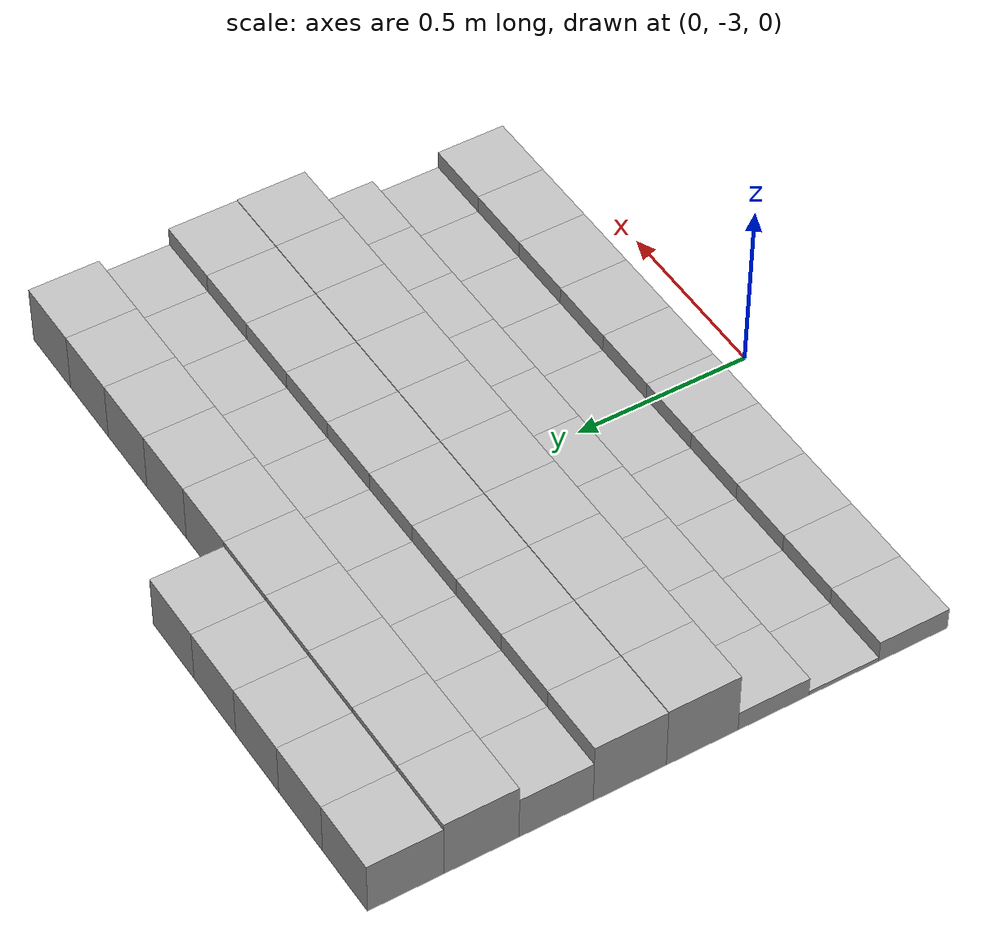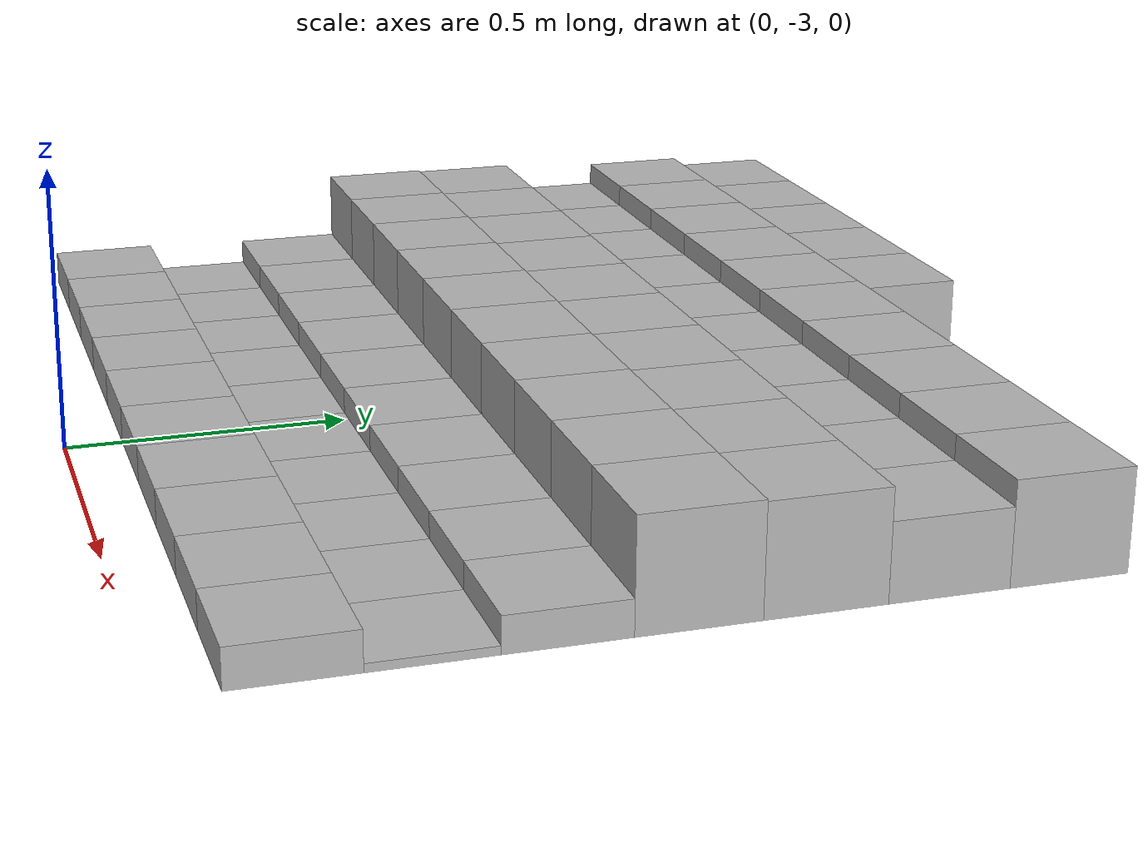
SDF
<sdf version="1.6">
 <model name="Terrain">
  <static>true</static>
  <link name="box_7_0">
   <pose>-0.9 -1.4 0.079554225096 0 0 0</pose>
   <inertial>
    <mass>1.0</mass>
    <inertia><ixx>0.0</ixx><ixy>0.0</ixy><ixz>0.0</ixz><iyy>0.0</iyy><iyz>0.0</iyz><izz>0.0</izz></inertia>
   </inertial>
   <collision name="collision"><geometry><box><size>0.2 0.2 0.159108450192</size></box></geometry></collision>
   <visual name="visual"><geometry><box><size>0.2 0.2 0.159108450192</size></box></geometry></visual>
  </link>
  <link name="box_7_1">
   <pose>-0.7 -1.4 0.079554225096 0 0 0</pose>
   <inertial>
    <mass>1.0</mass>
    <inertia><ixx>0.0</ixx><ixy>0.0</ixy><ixz>0.0</ixz><iyy>0.0</iyy><iyz>0.0</iyz><izz>0.0</izz></inertia>
   </inertial>
   <collision name="collision"><geometry><box><size>0.2 0.2 0.159108450192</size></box></geometry></collision>
   <visual name="visual"><geometry><box><size>0.2 0.2 0.159108450192</size></box></geometry></visual>
  </link>
  <link name="box_7_2">
   <pose>-0.5 -1.4 0.079554225096 0 0 0</pose>
   <inertial>
    <mass>1.0</mass>
    <inertia><ixx>0.0</ixx><ixy>0.0</ixy><ixz>0.0</ixz><iyy>0.0</iyy><iyz>0.0</iyz><izz>0.0</izz></inertia>
   </inertial>
   <collision name="collision"><geometry><box><size>0.2 0.2 0.159108450192</size></box></geometry></collision>
   <visual name="visual"><geometry><box><size>0.2 0.2 0.159108450192</size></box></geometry></visual>
  </link>
  <link name="box_7_3">
   <pose>-0.3 -1.4 0.079554225096 0 0 0</pose>
   <inertial>
    <mass>1.0</mass>
    <inertia><ixx>0.0</ixx><ixy>0.0</ixy><ixz>0.0</ixz><iyy>0.0</iyy><iyz>0.0</iyz><izz>0.0</izz></inertia>
   </inertial>
   <collision name="collision"><geometry><box><size>0.2 0.2 0.159108450192</size></box></geometry></collision>
   <visual name="visual"><geometry><box><size>0.2 0.2 0.159108450192</size></box></geometry></visual>
  </link>
  <link name="box_7_4">
   <pose>-0.1 -1.4 0.079554225096 0 0 0</pose>
   <inertial>
    <mass>1.0</mass>
    <inertia><ixx>0.0</ixx><ixy>0.0</ixy><ixz>0.0</ixz><iyy>0.0</iyy><iyz>0.0</iyz><izz>0.0</izz></inertia>
   </inertial>
   <collision name="collision"><geometry><box><size>0.2 0.2 0.159108450192</size></box></geometry></collision>
   <visual name="visual"><geometry><box><size>0.2 0.2 0.159108450192</size></box></geometry></visual>
  </link>
  <link name="box_8_0">
   <pose>-0.9 -1.6 0.0880272339527 0 0 0</pose>
   <inertial>
    <mass>1.0</mass>
    <inertia><ixx>0.0</ixx><ixy>0.0</ixy><ixz>0.0</ixz><iyy>0.0</iyy><iyz>0.0</iyz><izz>0.0</izz></inertia>
   </inertial>
   <collision name="collision"><geometry><box><size>0.2 0.2 0.176054467905</size></box></geometry></collision>
   <visual name="visual"><geometry><box><size>0.2 0.2 0.176054467905</size></box></geometry></visual>
  </link>
  <link name="box_8_1">
   <pose>-0.7 -1.6 0.0880272339527 0 0 0</pose>
   <inertial>
    <mass>1.0</mass>
    <inertia><ixx>0.0</ixx><ixy>0.0</ixy><ixz>0.0</ixz><iyy>0.0</iyy><iyz>0.0</iyz><izz>0.0</izz></inertia>
   </inertial>
   <collision name="collision"><geometry><box><size>0.2 0.2 0.176054467905</size></box></geometry></collision>
   <visual name="visual"><geometry><box><size>0.2 0.2 0.176054467905</size></box></geometry></visual>
  </link>
  <link name="box_8_2">
   <pose>-0.5 -1.6 0.0880272339527 0 0 0</pose>
   <inertial>
    <mass>1.0</mass>
    <inertia><ixx>0.0</ixx><ixy>0.0</ixy><ixz>0.0</ixz><iyy>0.0</iyy><iyz>0.0</iyz><izz>0.0</izz></inertia>
   </inertial>
   <collision name="collision"><geometry><box><size>0.2 0.2 0.176054467905</size></box></geometry></collision>
   <visual name="visual"><geometry><box><size>0.2 0.2 0.176054467905</size></box></geometry></visual>
  </link>
  <link name="box_8_3">
   <pose>-0.3 -1.6 0.0880272339527 0 0 0</pose>
   <inertial>
    <mass>1.0</mass>
    <inertia><ixx>0.0</ixx><ixy>0.0</ixy><ixz>0.0</ixz><iyy>0.0</iyy><iyz>0.0</iyz><izz>0.0</izz></inertia>
   </inertial>
   <collision name="collision"><geometry><box><size>0.2 0.2 0.176054467905</size></box></geometry></collision>
   <visual name="visual"><geometry><box><size>0.2 0.2 0.176054467905</size></box></geometry></visual>
  </link>
  <link name="box_8_4">
   <pose>-0.1 -1.6 0.0880272339527 0 0 0</pose>
   <inertial>
    <mass>1.0</mass>
    <inertia><ixx>0.0</ixx><ixy>0.0</ixy><ixz>0.0</ixz><iyy>0.0</iyy><iyz>0.0</iyz><izz>0.0</izz></inertia>
   </inertial>
   <collision name="collision"><geometry><box><size>0.2 0.2 0.176054467905</size></box></geometry></collision>
   <visual name="visual"><geometry><box><size>0.2 0.2 0.176054467905</size></box></geometry></visual>
  </link>
  <link name="box_8_5">
   <pose>0.1 -1.6 0.0880272339527 0 0 0</pose>
   <inertial>
    <mass>1.0</mass>
    <inertia><ixx>0.0</ixx><ixy>0.0</ixy><ixz>0.0</ixz><iyy>0.0</iyy><iyz>0.0</iyz><izz>0.0</izz></inertia>
   </inertial>
   <collision name="collision"><geometry><box><size>0.2 0.2 0.176054467905</size></box></geometry></collision>
   <visual name="visual"><geometry><box><size>0.2 0.2 0.176054467905</size></box></geometry></visual>
  </link>
  <link name="box_8_6">
   <pose>0.3 -1.6 0.0880272339527 0 0 0</pose>
   <inertial>
    <mass>1.0</mass>
    <inertia><ixx>0.0</ixx><ixy>0.0</ixy><ixz>0.0</ixz><iyy>0.0</iyy><iyz>0.0</iyz><izz>0.0</izz></inertia>
   </inertial>
   <collision name="collision"><geometry><box><size>0.2 0.2 0.176054467905</size></box></geometry></collision>
   <visual name="visual"><geometry><box><size>0.2 0.2 0.176054467905</size></box></geometry></visual>
  </link>
  <link name="box_8_7">
   <pose>0.5 -1.6 0.0880272339527 0 0 0</pose>
   <inertial>
    <mass>1.0</mass>
    <inertia><ixx>0.0</ixx><ixy>0.0</ixy><ixz>0.0</ixz><iyy>0.0</iyy><iyz>0.0</iyz><izz>0.0</izz></inertia>
   </inertial>
   <collision name="collision"><geometry><box><size>0.2 0.2 0.176054467905</size></box></geometry></collision>
   <visual name="visual"><geometry><box><size>0.2 0.2 0.176054467905</size></box></geometry></visual>
  </link>
  <link name="box_8_8">
   <pose>0.7 -1.6 0.0880272339527 0 0 0</pose>
   <inertial>
    <mass>1.0</mass>
    <inertia><ixx>0.0</ixx><ixy>0.0</ixy><ixz>0.0</ixz><iyy>0.0</iyy><iyz>0.0</iyz><izz>0.0</izz></inertia>
   </inertial>
   <collision name="collision"><geometry><box><size>0.2 0.2 0.176054467905</size></box></geometry></collision>
   <visual name="visual"><geometry><box><size>0.2 0.2 0.176054467905</size></box></geometry></visual>
  </link>
  <link name="box_8_9">
   <pose>0.9 -1.6 0.0880272339527 0 0 0</pose>
   <inertial>
    <mass>1.0</mass>
    <inertia><ixx>0.0</ixx><ixy>0.0</ixy><ixz>0.0</ixz><iyy>0.0</iyy><iyz>0.0</iyz><izz>0.0</izz></inertia>
   </inertial>
   <collision name="collision"><geometry><box><size>0.2 0.2 0.176054467905</size></box></geometry></collision>
   <visual name="visual"><geometry><box><size>0.2 0.2 0.176054467905</size></box></geometry></visual>
  </link>
  <link name="box_9_0">
   <pose>-0.9 -1.8 0.0663556033367 0 0 0</pose>
   <inertial>
    <mass>1.0</mass>
    <inertia><ixx>0.0</ixx><ixy>0.0</ixy><ixz>0.0</ixz><iyy>0.0</iyy><iyz>0.0</iyz><izz>0.0</izz></inertia>
   </inertial>
   <collision name="collision"><geometry><box><size>0.2 0.2 0.132711206673</size></box></geometry></collision>
   <visual name="visual"><geometry><box><size>0.2 0.2 0.132711206673</size></box></geometry></visual>
  </link>
  <link name="box_9_1">
   <pose>-0.7 -1.8 0.0663556033367 0 0 0</pose>
   <inertial>
    <mass>1.0</mass>
    <inertia><ixx>0.0</ixx><ixy>0.0</ixy><ixz>0.0</ixz><iyy>0.0</iyy><iyz>0.0</iyz><izz>0.0</izz></inertia>
   </inertial>
   <collision name="collision"><geometry><box><size>0.2 0.2 0.132711206673</size></box></geometry></collision>
   <visual name="visual"><geometry><box><size>0.2 0.2 0.132711206673</size></box></geometry></visual>
  </link>
  <link name="box_9_2">
   <pose>-0.5 -1.8 0.0663556033367 0 0 0</pose>
   <inertial>
    <mass>1.0</mass>
    <inertia><ixx>0.0</ixx><ixy>0.0</ixy><ixz>0.0</ixz><iyy>0.0</iyy><iyz>0.0</iyz><izz>0.0</izz></inertia>
   </inertial>
   <collision name="collision"><geometry><box><size>0.2 0.2 0.132711206673</size></box></geometry></collision>
   <visual name="visual"><geometry><box><size>0.2 0.2 0.132711206673</size></box></geometry></visual>
  </link>
  <link name="box_9_3">
   <pose>-0.3 -1.8 0.0663556033367 0 0 0</pose>
   <inertial>
    <mass>1.0</mass>
    <inertia><ixx>0.0</ixx><ixy>0.0</ixy><ixz>0.0</ixz><iyy>0.0</iyy><iyz>0.0</iyz><izz>0.0</izz></inertia>
   </inertial>
   <collision name="collision"><geometry><box><size>0.2 0.2 0.132711206673</size></box></geometry></collision>
   <visual name="visual"><geometry><box><size>0.2 0.2 0.132711206673</size></box></geometry></visual>
  </link>
  <link name="box_9_4">
   <pose>-0.1 -1.8 0.0663556033367 0 0 0</pose>
   <inertial>
    <mass>1.0</mass>
    <inertia><ixx>0.0</ixx><ixy>0.0</ixy><ixz>0.0</ixz><iyy>0.0</iyy><iyz>0.0</iyz><izz>0.0</izz></inertia>
   </inertial>
   <collision name="collision"><geometry><box><size>0.2 0.2 0.132711206673</size></box></geometry></collision>
   <visual name="visual"><geometry><box><size>0.2 0.2 0.132711206673</size></box></geometry></visual>
  </link>
  <link name="box_9_5">
   <pose>0.1 -1.8 0.0663556033367 0 0 0</pose>
   <inertial>
    <mass>1.0</mass>
    <inertia><ixx>0.0</ixx><ixy>0.0</ixy><ixz>0.0</ixz><iyy>0.0</iyy><iyz>0.0</iyz><izz>0.0</izz></inertia>
   </inertial>
   <collision name="collision"><geometry><box><size>0.2 0.2 0.132711206673</size></box></geometry></collision>
   <visual name="visual"><geometry><box><size>0.2 0.2 0.132711206673</size></box></geometry></visual>
  </link>
  <link name="box_9_6">
   <pose>0.3 -1.8 0.0663556033367 0 0 0</pose>
   <inertial>
    <mass>1.0</mass>
    <inertia><ixx>0.0</ixx><ixy>0.0</ixy><ixz>0.0</ixz><iyy>0.0</iyy><iyz>0.0</iyz><izz>0.0</izz></inertia>
   </inertial>
   <collision name="collision"><geometry><box><size>0.2 0.2 0.132711206673</size></box></geometry></collision>
   <visual name="visual"><geometry><box><size>0.2 0.2 0.132711206673</size></box></geometry></visual>
  </link>
  <link name="box_9_7">
   <pose>0.5 -1.8 0.0663556033367 0 0 0</pose>
   <inertial>
    <mass>1.0</mass>
    <inertia><ixx>0.0</ixx><ixy>0.0</ixy><ixz>0.0</ixz><iyy>0.0</iyy><iyz>0.0</iyz><izz>0.0</izz></inertia>
   </inertial>
   <collision name="collision"><geometry><box><size>0.2 0.2 0.132711206673</size></box></geometry></collision>
   <visual name="visual"><geometry><box><size>0.2 0.2 0.132711206673</size></box></geometry></visual>
  </link>
  <link name="box_9_8">
   <pose>0.7 -1.8 0.0663556033367 0 0 0</pose>
   <inertial>
    <mass>1.0</mass>
    <inertia><ixx>0.0</ixx><ixy>0.0</ixy><ixz>0.0</ixz><iyy>0.0</iyy><iyz>0.0</iyz><izz>0.0</izz></inertia>
   </inertial>
   <collision name="collision"><geometry><box><size>0.2 0.2 0.132711206673</size></box></geometry></collision>
   <visual name="visual"><geometry><box><size>0.2 0.2 0.132711206673</size></box></geometry></visual>
  </link>
  <link name="box_9_9">
   <pose>0.9 -1.8 0.0663556033367 0 0 0</pose>
   <inertial>
    <mass>1.0</mass>
    <inertia><ixx>0.0</ixx><ixy>0.0</ixy><ixz>0.0</ixz><iyy>0.0</iyy><iyz>0.0</iyz><izz>0.0</izz></inertia>
   </inertial>
   <collision name="collision"><geometry><box><size>0.2 0.2 0.132711206673</size></box></geometry></collision>
   <visual name="visual"><geometry><box><size>0.2 0.2 0.132711206673</size></box></geometry></visual>
  </link>
  <link name="box_10_0">
   <pose>-0.9 -2.0 0.0940804646009 0 0 0</pose>
   <inertial>
    <mass>1.0</mass>
    <inertia><ixx>0.0</ixx><ixy>0.0</ixy><ixz>0.0</ixz><iyy>0.0</iyy><iyz>0.0</iyz><izz>0.0</izz></inertia>
   </inertial>
   <collision name="collision"><geometry><box><size>0.2 0.2 0.188160929202</size></box></geometry></collision>
   <visual name="visual"><geometry><box><size>0.2 0.2 0.188160929202</size></box></geometry></visual>
  </link>
  <link name="box_10_1">
   <pose>-0.7 -2.0 0.0940804646009 0 0 0</pose>
   <inertial>
    <mass>1.0</mass>
    <inertia><ixx>0.0</ixx><ixy>0.0</ixy><ixz>0.0</ixz><iyy>0.0</iyy><iyz>0.0</iyz><izz>0.0</izz></inertia>
   </inertial>
   <collision name="collision"><geometry><box><size>0.2 0.2 0.188160929202</size></box></geometry></collision>
   <visual name="visual"><geometry><box><size>0.2 0.2 0.188160929202</size></box></geometry></visual>
  </link>
  <link name="box_10_2">
   <pose>-0.5 -2.0 0.0940804646009 0 0 0</pose>
   <inertial>
    <mass>1.0</mass>
    <inertia><ixx>0.0</ixx><ixy>0.0</ixy><ixz>0.0</ixz><iyy>0.0</iyy><iyz>0.0</iyz><izz>0.0</izz></inertia>
   </inertial>
   <collision name="collision"><geometry><box><size>0.2 0.2 0.188160929202</size></box></geometry></collision>
   <visual name="visual"><geometry><box><size>0.2 0.2 0.188160929202</size></box></geometry></visual>
  </link>
  <link name="box_10_3">
   <pose>-0.3 -2.0 0.0940804646009 0 0 0</pose>
   <inertial>
    <mass>1.0</mass>
    <inertia><ixx>0.0</ixx><ixy>0.0</ixy><ixz>0.0</ixz><iyy>0.0</iyy><iyz>0.0</iyz><izz>0.0</izz></inertia>
   </inertial>
   <collision name="collision"><geometry><box><size>0.2 0.2 0.188160929202</size></box></geometry></collision>
   <visual name="visual"><geometry><box><size>0.2 0.2 0.188160929202</size></box></geometry></visual>
  </link>
  <link name="box_10_4">
   <pose>-0.1 -2.0 0.0940804646009 0 0 0</pose>
   <inertial>
    <mass>1.0</mass>
    <inertia><ixx>0.0</ixx><ixy>0.0</ixy><ixz>0.0</ixz><iyy>0.0</iyy><iyz>0.0</iyz><izz>0.0</izz></inertia>
   </inertial>
   <collision name="collision"><geometry><box><size>0.2 0.2 0.188160929202</size></box></geometry></collision>
   <visual name="visual"><geometry><box><size>0.2 0.2 0.188160929202</size></box></geometry></visual>
  </link>
  <link name="box_10_5">
   <pose>0.1 -2.0 0.0940804646009 0 0 0</pose>
   <inertial>
    <mass>1.0</mass>
    <inertia><ixx>0.0</ixx><ixy>0.0</ixy><ixz>0.0</ixz><iyy>0.0</iyy><iyz>0.0</iyz><izz>0.0</izz></inertia>
   </inertial>
   <collision name="collision"><geometry><box><size>0.2 0.2 0.188160929202</size></box></geometry></collision>
   <visual name="visual"><geometry><box><size>0.2 0.2 0.188160929202</size></box></geometry></visual>
  </link>
  <link name="box_10_6">
   <pose>0.3 -2.0 0.0940804646009 0 0 0</pose>
   <inertial>
    <mass>1.0</mass>
    <inertia><ixx>0.0</ixx><ixy>0.0</ixy><ixz>0.0</ixz><iyy>0.0</iyy><iyz>0.0</iyz><izz>0.0</izz></inertia>
   </inertial>
   <collision name="collision"><geometry><box><size>0.2 0.2 0.188160929202</size></box></geometry></collision>
   <visual name="visual"><geometry><box><size>0.2 0.2 0.188160929202</size></box></geometry></visual>
  </link>
  <link name="box_10_7">
   <pose>0.5 -2.0 0.0940804646009 0 0 0</pose>
   <inertial>
    <mass>1.0</mass>
    <inertia><ixx>0.0</ixx><ixy>0.0</ixy><ixz>0.0</ixz><iyy>0.0</iyy><iyz>0.0</iyz><izz>0.0</izz></inertia>
   </inertial>
   <collision name="collision"><geometry><box><size>0.2 0.2 0.188160929202</size></box></geometry></collision>
   <visual name="visual"><geometry><box><size>0.2 0.2 0.188160929202</size></box></geometry></visual>
  </link>
  <link name="box_10_8">
   <pose>0.7 -2.0 0.0940804646009 0 0 0</pose>
   <inertial>
    <mass>1.0</mass>
    <inertia><ixx>0.0</ixx><ixy>0.0</ixy><ixz>0.0</ixz><iyy>0.0</iyy><iyz>0.0</iyz><izz>0.0</izz></inertia>
   </inertial>
   <collision name="collision"><geometry><box><size>0.2 0.2 0.188160929202</size></box></geometry></collision>
   <visual name="visual"><geometry><box><size>0.2 0.2 0.188160929202</size></box></geometry></visual>
  </link>
  <link name="box_10_9">
   <pose>0.9 -2.0 0.0940804646009 0 0 0</pose>
   <inertial>
    <mass>1.0</mass>
    <inertia><ixx>0.0</ixx><ixy>0.0</ixy><ixz>0.0</ixz><iyy>0.0</iyy><iyz>0.0</iyz><izz>0.0</izz></inertia>
   </inertial>
   <collision name="collision"><geometry><box><size>0.2 0.2 0.188160929202</size></box></geometry></collision>
   <visual name="visual"><geometry><box><size>0.2 0.2 0.188160929202</size></box></geometry></visual>
  </link>
  <link name="box_11_0">
   <pose>-0.9 -2.2 0.0954609548179 0 0 0</pose>
   <inertial>
    <mass>1.0</mass>
    <inertia><ixx>0.0</ixx><ixy>0.0</ixy><ixz>0.0</ixz><iyy>0.0</iyy><iyz>0.0</iyz><izz>0.0</izz></inertia>
   </inertial>
   <collision name="collision"><geometry><box><size>0.2 0.2 0.190921909636</size></box></geometry></collision>
   <visual name="visual"><geometry><box><size>0.2 0.2 0.190921909636</size></box></geometry></visual>
  </link>
  <link name="box_11_1">
   <pose>-0.7 -2.2 0.0954609548179 0 0 0</pose>
   <inertial>
    <mass>1.0</mass>
    <inertia><ixx>0.0</ixx><ixy>0.0</ixy><ixz>0.0</ixz><iyy>0.0</iyy><iyz>0.0</iyz><izz>0.0</izz></inertia>
   </inertial>
   <collision name="collision"><geometry><box><size>0.2 0.2 0.190921909636</size></box></geometry></collision>
   <visual name="visual"><geometry><box><size>0.2 0.2 0.190921909636</size></box></geometry></visual>
  </link>
  <link name="box_11_2">
   <pose>-0.5 -2.2 0.0954609548179 0 0 0</pose>
   <inertial>
    <mass>1.0</mass>
    <inertia><ixx>0.0</ixx><ixy>0.0</ixy><ixz>0.0</ixz><iyy>0.0</iyy><iyz>0.0</iyz><izz>0.0</izz></inertia>
   </inertial>
   <collision name="collision"><geometry><box><size>0.2 0.2 0.190921909636</size></box></geometry></collision>
   <visual name="visual"><geometry><box><size>0.2 0.2 0.190921909636</size></box></geometry></visual>
  </link>
  <link name="box_11_3">
   <pose>-0.3 -2.2 0.0954609548179 0 0 0</pose>
   <inertial>
    <mass>1.0</mass>
    <inertia><ixx>0.0</ixx><ixy>0.0</ixy><ixz>0.0</ixz><iyy>0.0</iyy><iyz>0.0</iyz><izz>0.0</izz></inertia>
   </inertial>
   <collision name="collision"><geometry><box><size>0.2 0.2 0.190921909636</size></box></geometry></collision>
   <visual name="visual"><geometry><box><size>0.2 0.2 0.190921909636</size></box></geometry></visual>
  </link>
  <link name="box_11_4">
   <pose>-0.1 -2.2 0.0954609548179 0 0 0</pose>
   <inertial>
    <mass>1.0</mass>
    <inertia><ixx>0.0</ixx><ixy>0.0</ixy><ixz>0.0</ixz><iyy>0.0</iyy><iyz>0.0</iyz><izz>0.0</izz></inertia>
   </inertial>
   <collision name="collision"><geometry><box><size>0.2 0.2 0.190921909636</size></box></geometry></collision>
   <visual name="visual"><geometry><box><size>0.2 0.2 0.190921909636</size></box></geometry></visual>
  </link>
  <link name="box_11_5">
   <pose>0.1 -2.2 0.0954609548179 0 0 0</pose>
   <inertial>
    <mass>1.0</mass>
    <inertia><ixx>0.0</ixx><ixy>0.0</ixy><ixz>0.0</ixz><iyy>0.0</iyy><iyz>0.0</iyz><izz>0.0</izz></inertia>
   </inertial>
   <collision name="collision"><geometry><box><size>0.2 0.2 0.190921909636</size></box></geometry></collision>
   <visual name="visual"><geometry><box><size>0.2 0.2 0.190921909636</size></box></geometry></visual>
  </link>
  <link name="box_11_6">
   <pose>0.3 -2.2 0.0954609548179 0 0 0</pose>
   <inertial>
    <mass>1.0</mass>
    <inertia><ixx>0.0</ixx><ixy>0.0</ixy><ixz>0.0</ixz><iyy>0.0</iyy><iyz>0.0</iyz><izz>0.0</izz></inertia>
   </inertial>
   <collision name="collision"><geometry><box><size>0.2 0.2 0.190921909636</size></box></geometry></collision>
   <visual name="visual"><geometry><box><size>0.2 0.2 0.190921909636</size></box></geometry></visual>
  </link>
  <link name="box_11_7">
   <pose>0.5 -2.2 0.0954609548179 0 0 0</pose>
   <inertial>
    <mass>1.0</mass>
    <inertia><ixx>0.0</ixx><ixy>0.0</ixy><ixz>0.0</ixz><iyy>0.0</iyy><iyz>0.0</iyz><izz>0.0</izz></inertia>
   </inertial>
   <collision name="collision"><geometry><box><size>0.2 0.2 0.190921909636</size></box></geometry></collision>
   <visual name="visual"><geometry><box><size>0.2 0.2 0.190921909636</size></box></geometry></visual>
  </link>
  <link name="box_11_8">
   <pose>0.7 -2.2 0.0954609548179 0 0 0</pose>
   <inertial>
    <mass>1.0</mass>
    <inertia><ixx>0.0</ixx><ixy>0.0</ixy><ixz>0.0</ixz><iyy>0.0</iyy><iyz>0.0</iyz><izz>0.0</izz></inertia>
   </inertial>
   <collision name="collision"><geometry><box><size>0.2 0.2 0.190921909636</size></box></geometry></collision>
   <visual name="visual"><geometry><box><size>0.2 0.2 0.190921909636</size></box></geometry></visual>
  </link>
  <link name="box_11_9">
   <pose>0.9 -2.2 0.0954609548179 0 0 0</pose>
   <inertial>
    <mass>1.0</mass>
    <inertia><ixx>0.0</ixx><ixy>0.0</ixy><ixz>0.0</ixz><iyy>0.0</iyy><iyz>0.0</iyz><izz>0.0</izz></inertia>
   </inertial>
   <collision name="collision"><geometry><box><size>0.2 0.2 0.190921909636</size></box></geometry></collision>
   <visual name="visual"><geometry><box><size>0.2 0.2 0.190921909636</size></box></geometry></visual>
  </link>
  <link name="box_12_0">
   <pose>-0.9 -2.4 0.0305061526287 0 0 0</pose>
   <inertial>
    <mass>1.0</mass>
    <inertia><ixx>0.0</ixx><ixy>0.0</ixy><ixz>0.0</ixz><iyy>0.0</iyy><iyz>0.0</iyz><izz>0.0</izz></inertia>
   </inertial>
   <collision name="collision"><geometry><box><size>0.2 0.2 0.0610123052574</size></box></geometry></collision>
   <visual name="visual"><geometry><box><size>0.2 0.2 0.0610123052574</size></box></geometry></visual>
  </link>
  <link name="box_12_1">
   <pose>-0.7 -2.4 0.0305061526287 0 0 0</pose>
   <inertial>
    <mass>1.0</mass>
    <inertia><ixx>0.0</ixx><ixy>0.0</ixy><ixz>0.0</ixz><iyy>0.0</iyy><iyz>0.0</iyz><izz>0.0</izz></inertia>
   </inertial>
   <collision name="collision"><geometry><box><size>0.2 0.2 0.0610123052574</size></box></geometry></collision>
   <visual name="visual"><geometry><box><size>0.2 0.2 0.0610123052574</size></box></geometry></visual>
  </link>
  <link name="box_12_2">
   <pose>-0.5 -2.4 0.0305061526287 0 0 0</pose>
   <inertial>
    <mass>1.0</mass>
    <inertia><ixx>0.0</ixx><ixy>0.0</ixy><ixz>0.0</ixz><iyy>0.0</iyy><iyz>0.0</iyz><izz>0.0</izz></inertia>
   </inertial>
   <collision name="collision"><geometry><box><size>0.2 0.2 0.0610123052574</size></box></geometry></collision>
   <visual name="visual"><geometry><box><size>0.2 0.2 0.0610123052574</size></box></geometry></visual>
  </link>
  <link name="box_12_3">
   <pose>-0.3 -2.4 0.0305061526287 0 0 0</pose>
   <inertial>
    <mass>1.0</mass>
    <inertia><ixx>0.0</ixx><ixy>0.0</ixy><ixz>0.0</ixz><iyy>0.0</iyy><iyz>0.0</iyz><izz>0.0</izz></inertia>
   </inertial>
   <collision name="collision"><geometry><box><size>0.2 0.2 0.0610123052574</size></box></geometry></collision>
   <visual name="visual"><geometry><box><size>0.2 0.2 0.0610123052574</size></box></geometry></visual>
  </link>
  <link name="box_12_4">
   <pose>-0.1 -2.4 0.0305061526287 0 0 0</pose>
   <inertial>
    <mass>1.0</mass>
    <inertia><ixx>0.0</ixx><ixy>0.0</ixy><ixz>0.0</ixz><iyy>0.0</iyy><iyz>0.0</iyz><izz>0.0</izz></inertia>
   </inertial>
   <collision name="collision"><geometry><box><size>0.2 0.2 0.0610123052574</size></box></geometry></collision>
   <visual name="visual"><geometry><box><size>0.2 0.2 0.0610123052574</size></box></geometry></visual>
  </link>
  <link name="box_12_5">
   <pose>0.1 -2.4 0.0305061526287 0 0 0</pose>
   <inertial>
    <mass>1.0</mass>
    <inertia><ixx>0.0</ixx><ixy>0.0</ixy><ixz>0.0</ixz><iyy>0.0</iyy><iyz>0.0</iyz><izz>0.0</izz></inertia>
   </inertial>
   <collision name="collision"><geometry><box><size>0.2 0.2 0.0610123052574</size></box></geometry></collision>
   <visual name="visual"><geometry><box><size>0.2 0.2 0.0610123052574</size></box></geometry></visual>
  </link>
  <link name="box_12_6">
   <pose>0.3 -2.4 0.0305061526287 0 0 0</pose>
   <inertial>
    <mass>1.0</mass>
    <inertia><ixx>0.0</ixx><ixy>0.0</ixy><ixz>0.0</ixz><iyy>0.0</iyy><iyz>0.0</iyz><izz>0.0</izz></inertia>
   </inertial>
   <collision name="collision"><geometry><box><size>0.2 0.2 0.0610123052574</size></box></geometry></collision>
   <visual name="visual"><geometry><box><size>0.2 0.2 0.0610123052574</size></box></geometry></visual>
  </link>
  <link name="box_12_7">
   <pose>0.5 -2.4 0.0305061526287 0 0 0</pose>
   <inertial>
    <mass>1.0</mass>
    <inertia><ixx>0.0</ixx><ixy>0.0</ixy><ixz>0.0</ixz><iyy>0.0</iyy><iyz>0.0</iyz><izz>0.0</izz></inertia>
   </inertial>
   <collision name="collision"><geometry><box><size>0.2 0.2 0.0610123052574</size></box></geometry></collision>
   <visual name="visual"><geometry><box><size>0.2 0.2 0.0610123052574</size></box></geometry></visual>
  </link>
  <link name="box_12_8">
   <pose>0.7 -2.4 0.0305061526287 0 0 0</pose>
   <inertial>
    <mass>1.0</mass>
    <inertia><ixx>0.0</ixx><ixy>0.0</ixy><ixz>0.0</ixz><iyy>0.0</iyy><iyz>0.0</iyz><izz>0.0</izz></inertia>
   </inertial>
   <collision name="collision"><geometry><box><size>0.2 0.2 0.0610123052574</size></box></geometry></collision>
   <visual name="visual"><geometry><box><size>0.2 0.2 0.0610123052574</size></box></geometry></visual>
  </link>
  <link name="box_12_9">
   <pose>0.9 -2.4 0.0305061526287 0 0 0</pose>
   <inertial>
    <mass>1.0</mass>
    <inertia><ixx>0.0</ixx><ixy>0.0</ixy><ixz>0.0</ixz><iyy>0.0</iyy><iyz>0.0</iyz><izz>0.0</izz></inertia>
   </inertial>
   <collision name="collision"><geometry><box><size>0.2 0.2 0.0610123052574</size></box></geometry></collision>
   <visual name="visual"><geometry><box><size>0.2 0.2 0.0610123052574</size></box></geometry></visual>
  </link>
  <link name="box_13_0">
   <pose>-0.9 -2.6 0.00708597460728 0 0 0</pose>
   <inertial>
    <mass>1.0</mass>
    <inertia><ixx>0.0</ixx><ixy>0.0</ixy><ixz>0.0</ixz><iyy>0.0</iyy><iyz>0.0</iyz><izz>0.0</izz></inertia>
   </inertial>
   <collision name="collision"><geometry><box><size>0.2 0.2 0.0141719492146</size></box></geometry></collision>
   <visual name="visual"><geometry><box><size>0.2 0.2 0.0141719492146</size></box></geometry></visual>
  </link>
  <link name="box_13_1">
   <pose>-0.7 -2.6 0.00708597460728 0 0 0</pose>
   <inertial>
    <mass>1.0</mass>
    <inertia><ixx>0.0</ixx><ixy>0.0</ixy><ixz>0.0</ixz><iyy>0.0</iyy><iyz>0.0</iyz><izz>0.0</izz></inertia>
   </inertial>
   <collision name="collision"><geometry><box><size>0.2 0.2 0.0141719492146</size></box></geometry></collision>
   <visual name="visual"><geometry><box><size>0.2 0.2 0.0141719492146</size></box></geometry></visual>
  </link>
  <link name="box_13_2">
   <pose>-0.5 -2.6 0.00708597460728 0 0 0</pose>
   <inertial>
    <mass>1.0</mass>
    <inertia><ixx>0.0</ixx><ixy>0.0</ixy><ixz>0.0</ixz><iyy>0.0</iyy><iyz>0.0</iyz><izz>0.0</izz></inertia>
   </inertial>
   <collision name="collision"><geometry><box><size>0.2 0.2 0.0141719492146</size></box></geometry></collision>
   <visual name="visual"><geometry><box><size>0.2 0.2 0.0141719492146</size></box></geometry></visual>
  </link>
  <link name="box_13_3">
   <pose>-0.3 -2.6 0.00708597460728 0 0 0</pose>
   <inertial>
    <mass>1.0</mass>
    <inertia><ixx>0.0</ixx><ixy>0.0</ixy><ixz>0.0</ixz><iyy>0.0</iyy><iyz>0.0</iyz><izz>0.0</izz></inertia>
   </inertial>
   <collision name="collision"><geometry><box><size>0.2 0.2 0.0141719492146</size></box></geometry></collision>
   <visual name="visual"><geometry><box><size>0.2 0.2 0.0141719492146</size></box></geometry></visual>
  </link>
  <link name="box_13_4">
   <pose>-0.1 -2.6 0.00708597460728 0 0 0</pose>
   <inertial>
    <mass>1.0</mass>
    <inertia><ixx>0.0</ixx><ixy>0.0</ixy><ixz>0.0</ixz><iyy>0.0</iyy><iyz>0.0</iyz><izz>0.0</izz></inertia>
   </inertial>
   <collision name="collision"><geometry><box><size>0.2 0.2 0.0141719492146</size></box></geometry></collision>
   <visual name="visual"><geometry><box><size>0.2 0.2 0.0141719492146</size></box></geometry></visual>
  </link>
  <link name="box_13_5">
   <pose>0.1 -2.6 0.00708597460728 0 0 0</pose>
   <inertial>
    <mass>1.0</mass>
    <inertia><ixx>0.0</ixx><ixy>0.0</ixy><ixz>0.0</ixz><iyy>0.0</iyy><iyz>0.0</iyz><izz>0.0</izz></inertia>
   </inertial>
   <collision name="collision"><geometry><box><size>0.2 0.2 0.0141719492146</size></box></geometry></collision>
   <visual name="visual"><geometry><box><size>0.2 0.2 0.0141719492146</size></box></geometry></visual>
  </link>
  <link name="box_13_6">
   <pose>0.3 -2.6 0.00708597460728 0 0 0</pose>
   <inertial>
    <mass>1.0</mass>
    <inertia><ixx>0.0</ixx><ixy>0.0</ixy><ixz>0.0</ixz><iyy>0.0</iyy><iyz>0.0</iyz><izz>0.0</izz></inertia>
   </inertial>
   <collision name="collision"><geometry><box><size>0.2 0.2 0.0141719492146</size></box></geometry></collision>
   <visual name="visual"><geometry><box><size>0.2 0.2 0.0141719492146</size></box></geometry></visual>
  </link>
  <link name="box_13_7">
   <pose>0.5 -2.6 0.00708597460728 0 0 0</pose>
   <inertial>
    <mass>1.0</mass>
    <inertia><ixx>0.0</ixx><ixy>0.0</ixy><ixz>0.0</ixz><iyy>0.0</iyy><iyz>0.0</iyz><izz>0.0</izz></inertia>
   </inertial>
   <collision name="collision"><geometry><box><size>0.2 0.2 0.0141719492146</size></box></geometry></collision>
   <visual name="visual"><geometry><box><size>0.2 0.2 0.0141719492146</size></box></geometry></visual>
  </link>
  <link name="box_13_8">
   <pose>0.7 -2.6 0.00708597460728 0 0 0</pose>
   <inertial>
    <mass>1.0</mass>
    <inertia><ixx>0.0</ixx><ixy>0.0</ixy><ixz>0.0</ixz><iyy>0.0</iyy><iyz>0.0</iyz><izz>0.0</izz></inertia>
   </inertial>
   <collision name="collision"><geometry><box><size>0.2 0.2 0.0141719492146</size></box></geometry></collision>
   <visual name="visual"><geometry><box><size>0.2 0.2 0.0141719492146</size></box></geometry></visual>
  </link>
  <link name="box_13_9">
   <pose>0.9 -2.6 0.00708597460728 0 0 0</pose>
   <inertial>
    <mass>1.0</mass>
    <inertia><ixx>0.0</ixx><ixy>0.0</ixy><ixz>0.0</ixz><iyy>0.0</iyy><iyz>0.0</iyz><izz>0.0</izz></inertia>
   </inertial>
   <collision name="collision"><geometry><box><size>0.2 0.2 0.0141719492146</size></box></geometry></collision>
   <visual name="visual"><geometry><box><size>0.2 0.2 0.0141719492146</size></box></geometry></visual>
  </link>
  <link name="box_14_0">
   <pose>-0.9 -2.8 0.0334599890033 0 0 0</pose>
   <inertial>
    <mass>1.0</mass>
    <inertia><ixx>0.0</ixx><ixy>0.0</ixy><ixz>0.0</ixz><iyy>0.0</iyy><iyz>0.0</iyz><izz>0.0</izz></inertia>
   </inertial>
   <collision name="collision"><geometry><box><size>0.2 0.2 0.0669199780067</size></box></geometry></collision>
   <visual name="visual"><geometry><box><size>0.2 0.2 0.0669199780067</size></box></geometry></visual>
  </link>
  <link name="box_14_1">
   <pose>-0.7 -2.8 0.0334599890033 0 0 0</pose>
   <inertial>
    <mass>1.0</mass>
    <inertia><ixx>0.0</ixx><ixy>0.0</ixy><ixz>0.0</ixz><iyy>0.0</iyy><iyz>0.0</iyz><izz>0.0</izz></inertia>
   </inertial>
   <collision name="collision"><geometry><box><size>0.2 0.2 0.0669199780067</size></box></geometry></collision>
   <visual name="visual"><geometry><box><size>0.2 0.2 0.0669199780067</size></box></geometry></visual>
  </link>
  <link name="box_14_2">
   <pose>-0.5 -2.8 0.0334599890033 0 0 0</pose>
   <inertial>
    <mass>1.0</mass>
    <inertia><ixx>0.0</ixx><ixy>0.0</ixy><ixz>0.0</ixz><iyy>0.0</iyy><iyz>0.0</iyz><izz>0.0</izz></inertia>
   </inertial>
   <collision name="collision"><geometry><box><size>0.2 0.2 0.0669199780067</size></box></geometry></collision>
   <visual name="visual"><geometry><box><size>0.2 0.2 0.0669199780067</size></box></geometry></visual>
  </link>
  <link name="box_14_3">
   <pose>-0.3 -2.8 0.0334599890033 0 0 0</pose>
   <inertial>
    <mass>1.0</mass>
    <inertia><ixx>0.0</ixx><ixy>0.0</ixy><ixz>0.0</ixz><iyy>0.0</iyy><iyz>0.0</iyz><izz>0.0</izz></inertia>
   </inertial>
   <collision name="collision"><geometry><box><size>0.2 0.2 0.0669199780067</size></box></geometry></collision>
   <visual name="visual"><geometry><box><size>0.2 0.2 0.0669199780067</size></box></geometry></visual>
  </link>
  <link name="box_14_4">
   <pose>-0.1 -2.8 0.0334599890033 0 0 0</pose>
   <inertial>
    <mass>1.0</mass>
    <inertia><ixx>0.0</ixx><ixy>0.0</ixy><ixz>0.0</ixz><iyy>0.0</iyy><iyz>0.0</iyz><izz>0.0</izz></inertia>
   </inertial>
   <collision name="collision"><geometry><box><size>0.2 0.2 0.0669199780067</size></box></geometry></collision>
   <visual name="visual"><geometry><box><size>0.2 0.2 0.0669199780067</size></box></geometry></visual>
  </link>
  <link name="box_14_5">
   <pose>0.1 -2.8 0.0334599890033 0 0 0</pose>
   <inertial>
    <mass>1.0</mass>
    <inertia><ixx>0.0</ixx><ixy>0.0</ixy><ixz>0.0</ixz><iyy>0.0</iyy><iyz>0.0</iyz><izz>0.0</izz></inertia>
   </inertial>
   <collision name="collision"><geometry><box><size>0.2 0.2 0.0669199780067</size></box></geometry></collision>
   <visual name="visual"><geometry><box><size>0.2 0.2 0.0669199780067</size></box></geometry></visual>
  </link>
  <link name="box_14_6">
   <pose>0.3 -2.8 0.0334599890033 0 0 0</pose>
   <inertial>
    <mass>1.0</mass>
    <inertia><ixx>0.0</ixx><ixy>0.0</ixy><ixz>0.0</ixz><iyy>0.0</iyy><iyz>0.0</iyz><izz>0.0</izz></inertia>
   </inertial>
   <collision name="collision"><geometry><box><size>0.2 0.2 0.0669199780067</size></box></geometry></collision>
   <visual name="visual"><geometry><box><size>0.2 0.2 0.0669199780067</size></box></geometry></visual>
  </link>
  <link name="box_14_7">
   <pose>0.5 -2.8 0.0334599890033 0 0 0</pose>
   <inertial>
    <mass>1.0</mass>
    <inertia><ixx>0.0</ixx><ixy>0.0</ixy><ixz>0.0</ixz><iyy>0.0</iyy><iyz>0.0</iyz><izz>0.0</izz></inertia>
   </inertial>
   <collision name="collision"><geometry><box><size>0.2 0.2 0.0669199780067</size></box></geometry></collision>
   <visual name="visual"><geometry><box><size>0.2 0.2 0.0669199780067</size></box></geometry></visual>
  </link>
  <link name="box_14_8">
   <pose>0.7 -2.8 0.0334599890033 0 0 0</pose>
   <inertial>
    <mass>1.0</mass>
    <inertia><ixx>0.0</ixx><ixy>0.0</ixy><ixz>0.0</ixz><iyy>0.0</iyy><iyz>0.0</iyz><izz>0.0</izz></inertia>
   </inertial>
   <collision name="collision"><geometry><box><size>0.2 0.2 0.0669199780067</size></box></geometry></collision>
   <visual name="visual"><geometry><box><size>0.2 0.2 0.0669199780067</size></box></geometry></visual>
  </link>
  <link name="box_14_9">
   <pose>0.9 -2.8 0.0334599890033 0 0 0</pose>
   <inertial>
    <mass>1.0</mass>
    <inertia><ixx>0.0</ixx><ixy>0.0</ixy><ixz>0.0</ixz><iyy>0.0</iyy><iyz>0.0</iyz><izz>0.0</izz></inertia>
   </inertial>
   <collision name="collision"><geometry><box><size>0.2 0.2 0.0669199780067</size></box></geometry></collision>
   <visual name="visual"><geometry><box><size>0.2 0.2 0.0669199780067</size></box></geometry></visual>
  </link>
 </model>
</sdf>
